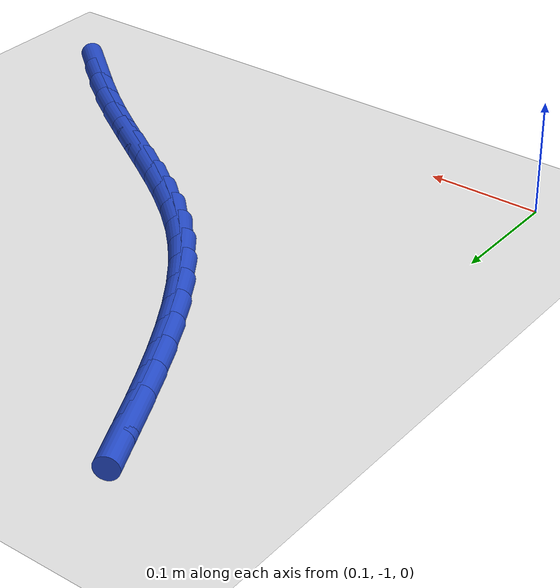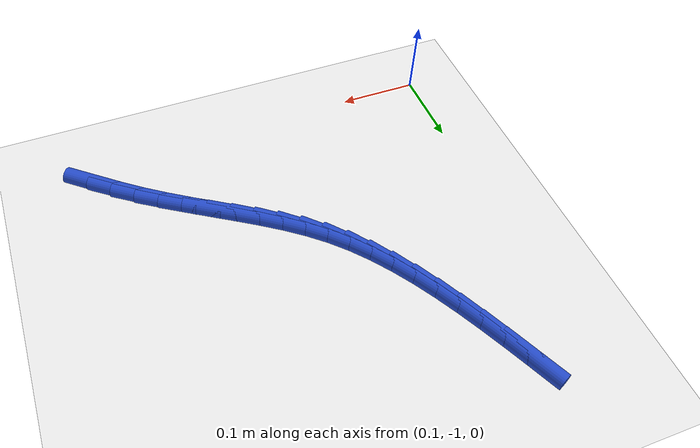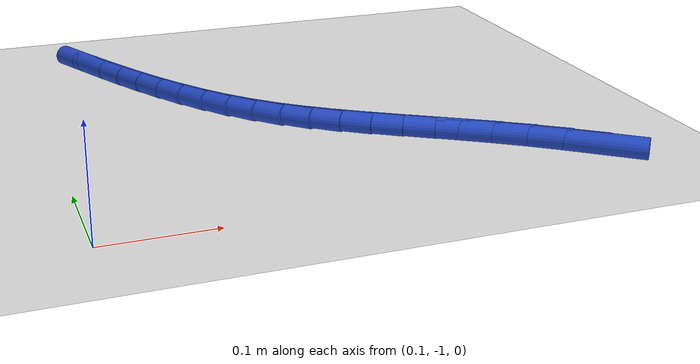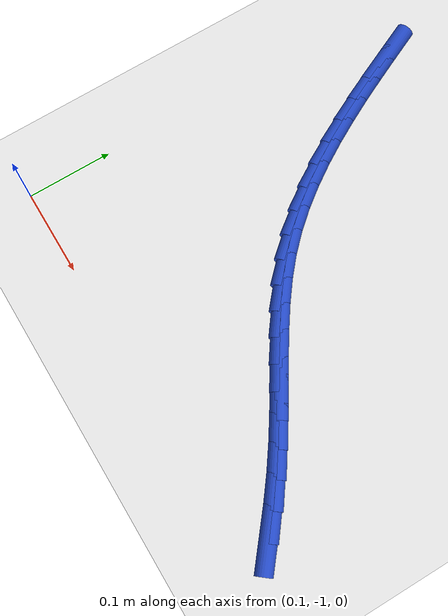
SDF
<sdf version="1.6">
 <world name="default">
  <model name="ground_plane">
   <static>1</static>
   <link name="link">
    <collision name="collision">
     <geometry><plane><normal>0 0 1</normal><size>100 100</size></plane></geometry>
     <surface><friction><ode><mu>100</mu><mu2>50</mu2></ode></friction></surface>
    </collision>
    <visual name="visual">
     <cast_shadows>0</cast_shadows>
     <geometry><plane><normal>0 0 1</normal><size>100 100</size></plane></geometry>
     <material>
      <script><uri>file://media/materials/scripts/gazebo.material</uri><name>Gazebo/WhiteGlow</name></script>
     </material>
    </visual>
   </link>
  </model>
  <model name="line">
   <link name="link_201">
    <pose>0.5539507601903702 -0.9657417417500771 0.01 0 1.57 -0.6828152205957401</pose>
    <collision name="collision">
     <geometry><cylinder><radius>0.01</radius><length>0.08</length></cylinder></geometry>
    </collision>
    <visual name="visual">
     <material>
      <script><name>Gazebo/Blue</name><uri>file://media/materials/scripts/gazebo.material</uri></script>
     </material>
     <geometry><cylinder><radius>0.01</radius><length>0.08</length></cylinder></geometry>
    </visual>
   </link>
   <link name="link_202">
    <pose>0.5282901101749583 -0.9448712114971143 0.01 0 1.57 -0.6520520566467457</pose>
    <collision name="collision">
     <geometry><cylinder><radius>0.01</radius><length>0.08</length></cylinder></geometry>
    </collision>
    <visual name="visual">
     <material>
      <script><name>Gazebo/Blue</name><uri>file://media/materials/scripts/gazebo.material</uri></script>
     </material>
     <geometry><cylinder><radius>0.01</radius><length>0.08</length></cylinder></geometry>
    </visual>
   </link>
   <link name="link_203">
    <pose>0.5024729656409549 -0.9251611789831311 0.01 0 1.57 -0.6125273715309226</pose>
    <collision name="collision">
     <geometry><cylinder><radius>0.01</radius><length>0.08</length></cylinder></geometry>
    </collision>
    <visual name="visual">
     <material>
      <script><name>Gazebo/Blue</name><uri>file://media/materials/scripts/gazebo.material</uri></script>
     </material>
     <geometry><cylinder><radius>0.01</radius><length>0.08</length></cylinder></geometry>
    </visual>
   </link>
   <link name="link_204">
    <pose>0.47651057808654457 -0.906917734078856 0.01 0 1.57 -0.5811329100512082</pose>
    <collision name="collision">
     <geometry><cylinder><radius>0.01</radius><length>0.08</length></cylinder></geometry>
    </collision>
    <visual name="visual">
     <material>
      <script><name>Gazebo/Blue</name><uri>file://media/materials/scripts/gazebo.material</uri></script>
     </material>
     <geometry><cylinder><radius>0.01</radius><length>0.08</length></cylinder></geometry>
    </visual>
   </link>
   <link name="link_205">
    <pose>0.450569141083931 -0.8898796872687202 0.01 0 1.57 -0.5633990802197094</pose>
    <collision name="collision">
     <geometry><cylinder><radius>0.01</radius><length>0.08</length></cylinder></geometry>
    </collision>
    <visual name="visual">
     <material>
      <script><name>Gazebo/Blue</name><uri>file://media/materials/scripts/gazebo.material</uri></script>
     </material>
     <geometry><cylinder><radius>0.01</radius><length>0.08</length></cylinder></geometry>
    </visual>
   </link>
   <link name="link_206">
    <pose>0.4248556163653689 -0.873636587211662 0.01 0 1.57 -0.5602886660783237</pose>
    <collision name="collision">
     <geometry><cylinder><radius>0.01</radius><length>0.08</length></cylinder></geometry>
    </collision>
    <visual name="visual">
     <material>
      <script><name>Gazebo/Blue</name><uri>file://media/materials/scripts/gazebo.material</uri></script>
     </material>
     <geometry><cylinder><radius>0.01</radius><length>0.08</length></cylinder></geometry>
    </visual>
   </link>
   <link name="link_207">
    <pose>0.399576965855323 -0.8577779818628928 0.01 0 1.57 -0.5726750065586489</pose>
    <collision name="collision">
     <geometry><cylinder><radius>0.01</radius><length>0.08</length></cylinder></geometry>
    </collision>
    <visual name="visual">
     <material>
      <script><name>Gazebo/Blue</name><uri>file://media/materials/scripts/gazebo.material</uri></script>
     </material>
     <geometry><cylinder><radius>0.01</radius><length>0.08</length></cylinder></geometry>
    </visual>
   </link>
   <link name="link_208">
    <pose>0.37494015147825743 -0.8418934191776238 0.01 0 1.57 -0.6013364637035263</pose>
    <collision name="collision">
     <geometry><cylinder><radius>0.01</radius><length>0.08</length></cylinder></geometry>
    </collision>
    <visual name="visual">
     <material>
      <script><name>Gazebo/Blue</name><uri>file://media/materials/scripts/gazebo.material</uri></script>
     </material>
     <geometry><cylinder><radius>0.01</radius><length>0.08</length></cylinder></geometry>
    </visual>
   </link>
   <link name="link_209">
    <pose>0.3511521351586381 -0.8255724471110671 0.01 0 1.57 -0.6468329545115434</pose>
    <collision name="collision">
     <geometry><cylinder><radius>0.01</radius><length>0.08</length></cylinder></geometry>
    </collision>
    <visual name="visual">
     <material>
      <script><name>Gazebo/Blue</name><uri>file://media/materials/scripts/gazebo.material</uri></script>
     </material>
     <geometry><cylinder><radius>0.01</radius><length>0.08</length></cylinder></geometry>
    </visual>
   </link>
   <link name="link_210">
    <pose>0.328419878820929 -0.8084046136184343 0.01 0 1.57 -0.7092351648753596</pose>
    <collision name="collision">
     <geometry><cylinder><radius>0.01</radius><length>0.08</length></cylinder></geometry>
    </collision>
    <visual name="visual">
     <material>
      <script><name>Gazebo/Blue</name><uri>file://media/materials/scripts/gazebo.material</uri></script>
     </material>
     <geometry><cylinder><radius>0.01</radius><length>0.08</length></cylinder></geometry>
    </visual>
   </link>
   <link name="link_211">
    <pose>0.3069503443895951 -0.7899794666549373 0.01 0 1.57 -0.7857477968956693</pose>
    <collision name="collision">
     <geometry><cylinder><radius>0.01</radius><length>0.08</length></cylinder></geometry>
    </collision>
    <visual name="visual">
     <material>
      <script><name>Gazebo/Blue</name><uri>file://media/materials/scripts/gazebo.material</uri></script>
     </material>
     <geometry><cylinder><radius>0.01</radius><length>0.08</length></cylinder></geometry>
    </visual>
   </link>
   <link name="link_212">
    <pose>0.2869209139163554 -0.7699360253627876 0.01 0 1.57 -0.860116238541273</pose>
    <collision name="collision">
     <geometry><cylinder><radius>0.01</radius><length>0.08</length></cylinder></geometry>
    </collision>
    <visual name="visual">
     <material>
      <script><name>Gazebo/Blue</name><uri>file://media/materials/scripts/gazebo.material</uri></script>
     </material>
     <geometry><cylinder><radius>0.01</radius><length>0.08</length></cylinder></geometry>
    </visual>
   </link>
   <link name="link_213">
    <pose>0.2682862730779031 -0.7482857599122352 0.01 0 1.57 -0.9250907390074787</pose>
    <collision name="collision">
     <geometry><cylinder><radius>0.01</radius><length>0.08</length></cylinder></geometry>
    </collision>
    <visual name="visual">
     <material>
      <script><name>Gazebo/Blue</name><uri>file://media/materials/scripts/gazebo.material</uri></script>
     </material>
     <geometry><cylinder><radius>0.01</radius><length>0.08</length></cylinder></geometry>
    </visual>
   </link>
   <link name="link_214">
    <pose>0.25089967414363873 -0.7252097839031506 0.01 0 1.57 -0.9807276837075777</pose>
    <collision name="collision">
     <geometry><cylinder><radius>0.01</radius><length>0.08</length></cylinder></geometry>
    </collision>
    <visual name="visual">
     <material>
      <script><name>Gazebo/Blue</name><uri>file://media/materials/scripts/gazebo.material</uri></script>
     </material>
     <geometry><cylinder><radius>0.01</radius><length>0.08</length></cylinder></geometry>
    </visual>
   </link>
   <link name="link_215">
    <pose>0.2346138551573947 -0.7008900709576702 0.01 0 1.57 -1.0273863011394881</pose>
    <collision name="collision">
     <geometry><cylinder><radius>0.01</radius><length>0.08</length></cylinder></geometry>
    </collision>
    <visual name="visual">
     <material>
      <script><name>Gazebo/Blue</name><uri>file://media/materials/scripts/gazebo.material</uri></script>
     </material>
     <geometry><cylinder><radius>0.01</radius><length>0.08</length></cylinder></geometry>
    </visual>
   </link>
   <link name="link_216">
    <pose>0.21928155416300493 -0.6755085946979328 0.01 0 1.57 -1.0655488207914654</pose>
    <collision name="collision">
     <geometry><cylinder><radius>0.01</radius><length>0.08</length></cylinder></geometry>
    </collision>
    <visual name="visual">
     <material>
      <script><name>Gazebo/Blue</name><uri>file://media/materials/scripts/gazebo.material</uri></script>
     </material>
     <geometry><cylinder><radius>0.01</radius><length>0.08</length></cylinder></geometry>
    </visual>
   </link>
   <link name="link_217">
    <pose>0.20475550920430186 -0.6492473287460748 0.01 0 1.57 -1.0957157531157182</pose>
    <collision name="collision">
     <geometry><cylinder><radius>0.01</radius><length>0.08</length></cylinder></geometry>
    </collision>
    <visual name="visual">
     <material>
      <script><name>Gazebo/Blue</name><uri>file://media/materials/scripts/gazebo.material</uri></script>
     </material>
     <geometry><cylinder><radius>0.01</radius><length>0.08</length></cylinder></geometry>
    </visual>
   </link>
   <link name="link_218">
    <pose>0.19088845832511833 -0.6222882467242337 0.01 0 1.57 -1.118337550057598</pose>
    <collision name="collision">
     <geometry><cylinder><radius>0.01</radius><length>0.08</length></cylinder></geometry>
    </collision>
    <visual name="visual">
     <material>
      <script><name>Gazebo/Blue</name><uri>file://media/materials/scripts/gazebo.material</uri></script>
     </material>
     <geometry><cylinder><radius>0.01</radius><length>0.08</length></cylinder></geometry>
    </visual>
   </link>
   <link name="link_219">
    <pose>0.17753313956928735 -0.5948133222545466 0.01 0 1.57 -1.1337732046004727</pose>
    <collision name="collision">
     <geometry><cylinder><radius>0.01</radius><length>0.08</length></cylinder></geometry>
    </collision>
    <visual name="visual">
     <material>
      <script><name>Gazebo/Blue</name><uri>file://media/materials/scripts/gazebo.material</uri></script>
     </material>
     <geometry><cylinder><radius>0.01</radius><length>0.08</length></cylinder></geometry>
    </visual>
   </link>
   <link name="link_220">
    <pose>0.16454229098064183 -0.5670045289591509 0.01 0 1.57 -1.1422664837773444</pose>
    <collision name="collision">
     <geometry><cylinder><radius>0.01</radius><length>0.08</length></cylinder></geometry>
    </collision>
    <visual name="visual">
     <material>
      <script><name>Gazebo/Blue</name><uri>file://media/materials/scripts/gazebo.material</uri></script>
     </material>
     <geometry><cylinder><radius>0.01</radius><length>0.08</length></cylinder></geometry>
    </visual>
   </link>
  </model>
 </world>
</sdf>
